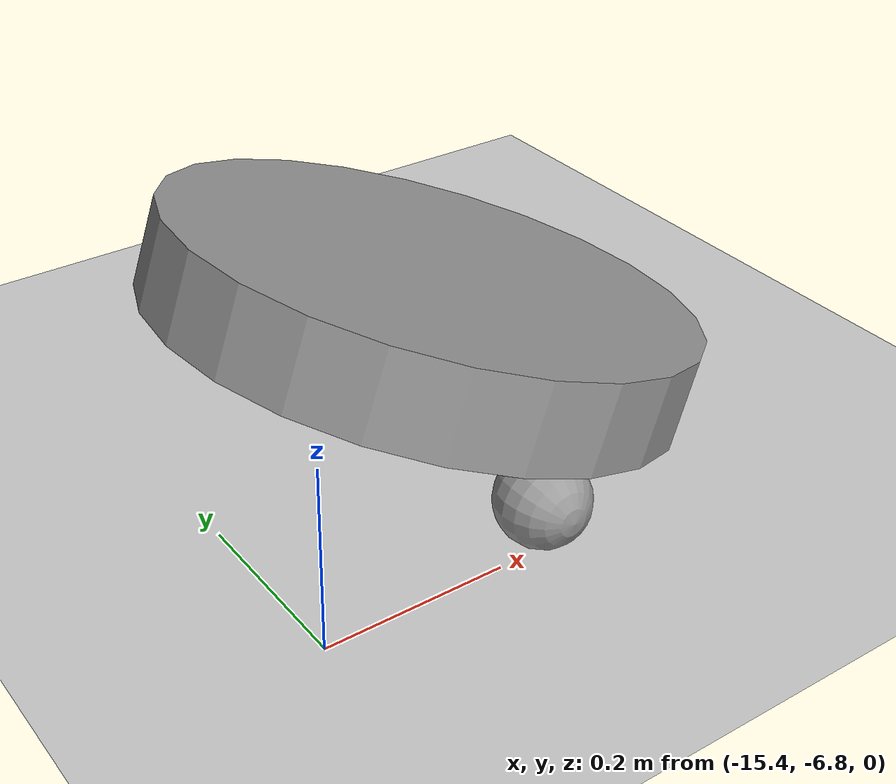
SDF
<sdf version="1.7">
 <world name="default">
  <model name="ground_plane">
   <static>1</static>
   <link name="link">
    <collision name="collision">
     <geometry><plane><normal>0 0 1</normal><size>100 100</size></plane></geometry>
     <surface><friction><ode><mu>100</mu><mu2>50</mu2></ode></friction></surface>
    </collision>
    <visual name="visual">
     <cast_shadows>0</cast_shadows>
     <geometry><plane><normal>0 0 1</normal><size>100 100</size></plane></geometry>
     <material>
      <script><uri>file://media/materials/scripts/gazebo.material</uri><name>Gazebo/Grey</name></script>
     </material>
    </visual>
   </link>
  </model>
  <model name="MYCLEANBOT">
   <link name="link_0">
    <inertial>
     <mass>1</mass>
     <inertia><ixx>0.145833</ixx><ixy>0</ixy><ixz>0</ixz><iyy>0.145833</iyy><iyz>0</iyz><izz>0.125</izz></inertia>
    </inertial>
    <pose>0.57158 0.218692 0.175 0 -0 0</pose>
    <visual name="visual">
     <geometry><cylinder><radius>0.3</radius><length>0.1</length></cylinder></geometry>
     <material>
      <lighting>1</lighting>
      <script><uri>file://media/materials/scripts/gazebo.material</uri><name>Gazebo/Grey</name></script>
      <shader type="pixel"><normal_map>__default__</normal_map></shader>
      <ambient>0.3 0.3 0.3 1</ambient>
      <diffuse>0.7 0.7 0.7 1</diffuse>
      <specular>0.01 0.01 0.01 1</specular>
      <emissive>0 0 0 1</emissive>
     </material>
    </visual>
    <collision name="collision">
     <geometry><cylinder><radius>0.3</radius><length>0.1</length></cylinder></geometry>
     <surface>
      <friction>
       <ode><mu>1</mu><mu2>1</mu2><fdir1>0 0 0</fdir1><slip1>0</slip1><slip2>0</slip2></ode>
       <torsional>
        <coefficient>1</coefficient>
        <patch_radius>0</patch_radius>
        <surface_radius>0</surface_radius>
        <use_patch_radius>1</use_patch_radius>
        <ode><slip>0</slip></ode>
       </torsional>
      </friction>
      <bounce><restitution_coefficient>0</restitution_coefficient><threshold>1e+06</threshold></bounce>
      <contact>
       <collide_without_contact>0</collide_without_contact>
       <collide_without_contact_bitmask>1</collide_without_contact_bitmask>
       <collide_bitmask>1</collide_bitmask>
       <ode>
        <soft_cfm>0</soft_cfm>
        <soft_erp>0.2</soft_erp>
        <kp>1e+13</kp>
        <kd>1</kd>
        <max_vel>0.01</max_vel>
        <min_depth>0</min_depth>
       </ode>
       <bullet>
        <split_impulse>1</split_impulse>
        <split_impulse_penetration_threshold>-0.01</split_impulse_penetration_threshold>
        <soft_cfm>0</soft_cfm>
        <soft_erp>0.2</soft_erp>
        <kp>1e+13</kp>
        <kd>1</kd>
       </bullet>
      </contact>
     </surface>
    </collision>
   </link>
   <link name="link_1_clone">
    <inertial>
     <mass>1</mass>
     <inertia><ixx>0.1</ixx><ixy>0</ixy><ixz>0</ixz><iyy>0.1</iyy><iyz>0</iyz><izz>0.1</izz></inertia>
    </inertial>
    <pose>0.57158 0.468693 0.075 -1.57 0 0</pose>
    <visual name="visual">
     <geometry><sphere><radius>0.05</radius></sphere></geometry>
     <material>
      <lighting>1</lighting>
      <script><uri>file://media/materials/scripts/gazebo.material</uri><name>Gazebo/Grey</name></script>
      <shader type="pixel"><normal_map>__default__</normal_map></shader>
      <ambient>0.3 0.3 0.3 1</ambient>
      <diffuse>0.7 0.7 0.7 1</diffuse>
      <specular>0.01 0.01 0.01 1</specular>
      <emissive>0 0 0 1</emissive>
     </material>
    </visual>
    <collision name="collision">
     <geometry><sphere><radius>0.05</radius></sphere></geometry>
     <surface>
      <friction>
       <ode><mu>1</mu><mu2>1</mu2><fdir1>0 0 0</fdir1><slip1>0</slip1><slip2>0</slip2></ode>
       <torsional>
        <coefficient>1</coefficient>
        <patch_radius>0</patch_radius>
        <surface_radius>0</surface_radius>
        <use_patch_radius>1</use_patch_radius>
        <ode><slip>0</slip></ode>
       </torsional>
      </friction>
      <bounce><restitution_coefficient>0</restitution_coefficient><threshold>1e+06</threshold></bounce>
      <contact>
       <collide_without_contact>0</collide_without_contact>
       <collide_without_contact_bitmask>1</collide_without_contact_bitmask>
       <collide_bitmask>1</collide_bitmask>
       <ode>
        <soft_cfm>0</soft_cfm>
        <soft_erp>0.2</soft_erp>
        <kp>1e+13</kp>
        <kd>1</kd>
        <max_vel>0.01</max_vel>
        <min_depth>0</min_depth>
       </ode>
       <bullet>
        <split_impulse>1</split_impulse>
        <split_impulse_penetration_threshold>-0.01</split_impulse_penetration_threshold>
        <soft_cfm>0</soft_cfm>
        <soft_erp>0.2</soft_erp>
        <kp>1e+13</kp>
        <kd>1</kd>
       </bullet>
      </contact>
     </surface>
    </collision>
   </link>
   <link name="link_1_clone_clone">
    <inertial>
     <mass>1</mass>
     <inertia><ixx>0.1</ixx><ixy>0</ixy><ixz>0</ixz><iyy>0.1</iyy><iyz>0</iyz><izz>0.1</izz></inertia>
    </inertial>
    <pose>0.57158 -0.031307 0.075 1.57 -0 0</pose>
    <visual name="visual">
     <geometry><sphere><radius>0.05</radius></sphere></geometry>
     <material>
      <lighting>1</lighting>
      <script><uri>file://media/materials/scripts/gazebo.material</uri><name>Gazebo/Grey</name></script>
      <shader type="pixel"><normal_map>__default__</normal_map></shader>
      <ambient>0.3 0.3 0.3 1</ambient>
      <diffuse>0.7 0.7 0.7 1</diffuse>
      <specular>0.01 0.01 0.01 1</specular>
      <emissive>0 0 0 1</emissive>
     </material>
    </visual>
    <collision name="collision">
     <geometry><sphere><radius>0.05</radius></sphere></geometry>
     <surface>
      <friction>
       <ode><mu>1</mu><mu2>1</mu2><fdir1>0 0 0</fdir1><slip1>0</slip1><slip2>0</slip2></ode>
       <torsional>
        <coefficient>1</coefficient>
        <patch_radius>0</patch_radius>
        <surface_radius>0</surface_radius>
        <use_patch_radius>1</use_patch_radius>
        <ode><slip>0</slip></ode>
       </torsional>
      </friction>
      <bounce><restitution_coefficient>0</restitution_coefficient><threshold>1e+06</threshold></bounce>
      <contact>
       <collide_without_contact>0</collide_without_contact>
       <collide_without_contact_bitmask>1</collide_without_contact_bitmask>
       <collide_bitmask>1</collide_bitmask>
       <ode>
        <soft_cfm>0</soft_cfm>
        <soft_erp>0.2</soft_erp>
        <kp>1e+13</kp>
        <kd>1</kd>
        <max_vel>0.01</max_vel>
        <min_depth>0</min_depth>
       </ode>
       <bullet>
        <split_impulse>1</split_impulse>
        <split_impulse_penetration_threshold>-0.01</split_impulse_penetration_threshold>
        <soft_cfm>0</soft_cfm>
        <soft_erp>0.2</soft_erp>
        <kp>1e+13</kp>
        <kd>1</kd>
       </bullet>
      </contact>
     </surface>
    </collision>
   </link>
   <joint name="link_0_JOINT_2" type="revolute">
    <parent>link_0</parent>
    <child>link_1_clone_clone</child>
    <pose>0 0 0 0 -0.01 0</pose>
    <axis>
     <xyz>0 0 1</xyz>
     <limit>
      <lower>-1.79769e+308</lower>
      <upper>1.79769e+308</upper>
      <effort>-1</effort>
      <velocity>-1</velocity>
     </limit>
     <dynamics>
      <spring_reference>0</spring_reference>
      <spring_stiffness>0</spring_stiffness>
      <damping>0</damping>
      <friction>0</friction>
     </dynamics>
    </axis>
    <physics>
     <ode><limit><cfm>0</cfm><erp>0.2</erp></limit><suspension><cfm>0</cfm><erp>0.2</erp></suspension></ode>
    </physics>
   </joint>
   <joint name="link_0_JOINT_3" type="revolute">
    <parent>link_0</parent>
    <child>link_1_clone</child>
    <axis>
     <xyz>0 0 1</xyz>
     <limit>
      <lower>-1.79769e+308</lower>
      <upper>1.79769e+308</upper>
      <effort>-1</effort>
      <velocity>-1</velocity>
     </limit>
     <dynamics>
      <spring_reference>0</spring_reference>
      <spring_stiffness>0</spring_stiffness>
      <damping>0</damping>
      <friction>0</friction>
     </dynamics>
    </axis>
    <physics>
     <ode><limit><cfm>0</cfm><erp>0.2</erp></limit><suspension><cfm>0</cfm><erp>0.2</erp></suspension></ode>
    </physics>
   </joint>
   <static>0</static>
   <pose>-15.7065 -6.76156 0.164431 0 0.330297 0.008626</pose>
  </model>
 </world>
</sdf>
